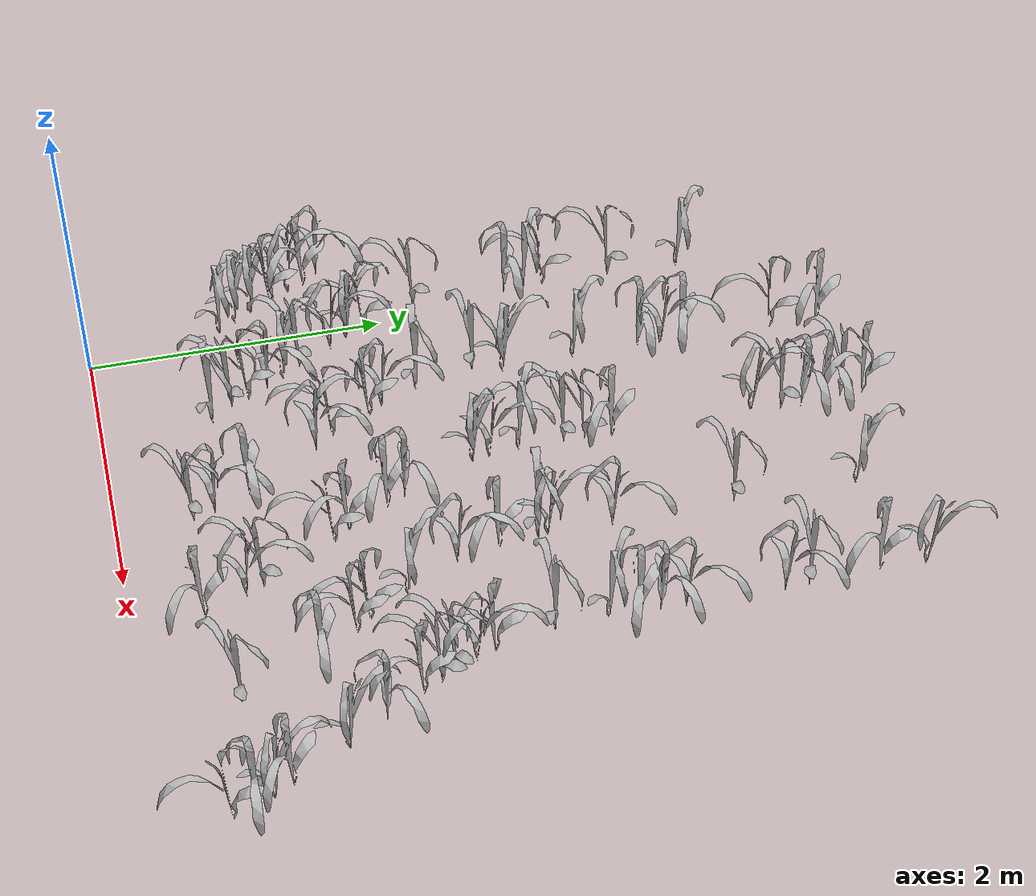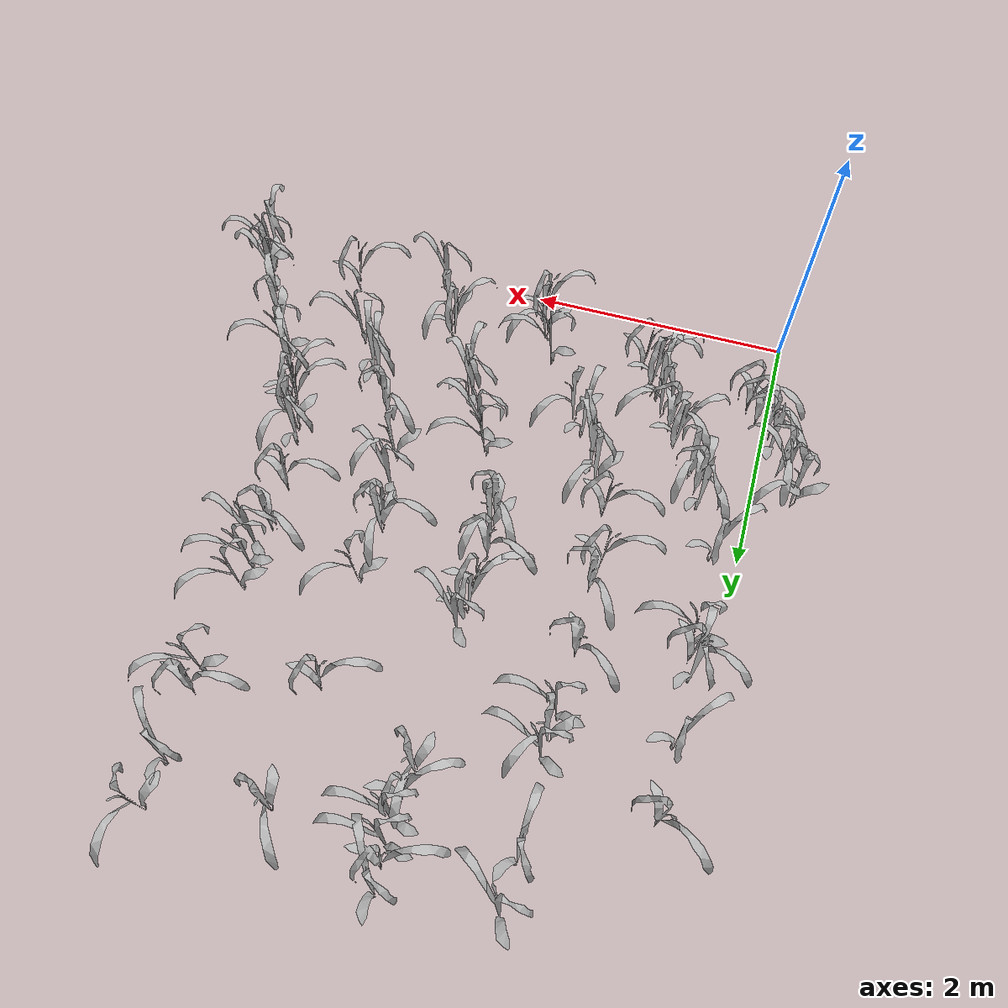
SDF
<sdf version="1.6">
 <world name="default">
  <include>
   <uri>model://maize_01</uri>
   <pose>0.18383181959480918 0.8958662362796985 0.2989652620931421 0.0 0.0 3.467905282745081</pose>
   <name>maize_01_0332</name>
   <static>true</static>
  </include>
  <include>
   <uri>model://maize_01</uri>
   <pose>0.10682219940322188 1.0131280186698228 0.2989652620931421 0.0 0.0 3.183100526046274</pose>
   <name>maize_01_0333</name>
   <static>true</static>
  </include>
  <include>
   <uri>model://maize_01</uri>
   <pose>0.03365599726035004 1.1314495480487918 0.2989652620931421 0.0 0.0 3.1187245882606707</pose>
   <name>maize_01_0334</name>
   <static>true</static>
  </include>
  <include>
   <uri>model://maize_01</uri>
   <pose>-0.030139900420178806 1.2696227397076558 0.2989652620931421 0.0 0.0 5.77605681294345</pose>
   <name>maize_01_0335</name>
   <static>true</static>
  </include>
  <include>
   <uri>model://maize_01</uri>
   <pose>-0.11407215265357198 1.4069969621074498 0.2989652620931421 0.0 0.0 2.4476001732700423</pose>
   <name>maize_01_0336</name>
   <static>true</static>
  </include>
  <include>
   <uri>model://maize_01</uri>
   <pose>-0.16986459446601312 1.516236006624349 0.2989652620931421 0.0 0.0 0.1114111442825732</pose>
   <name>maize_01_0337</name>
   <static>true</static>
  </include>
  <include>
   <uri>model://maize_01</uri>
   <pose>-0.247844698500318 1.6207478159505777 0.2989652620931421 0.0 0.0 1.531674634833781</pose>
   <name>maize_01_0338</name>
   <static>true</static>
  </include>
  <include>
   <uri>model://maize_01</uri>
   <pose>1.012828374834897 0.7353172180094185 0.2993062523895748 0.0 0.0 3.9300456820366896</pose>
   <name>maize_01_0376</name>
   <static>true</static>
  </include>
  <include>
   <uri>model://maize_01</uri>
   <pose>0.912483548576519 0.8740058016692058 0.2993062523895748 0.0 0.0 4.674985481229111</pose>
   <name>maize_01_0377</name>
   <static>true</static>
  </include>
  <include>
   <uri>model://maize_01</uri>
   <pose>0.8467944789519872 0.9890255482569976 0.2993062523895748 0.0 0.0 5.393729415344692</pose>
   <name>maize_01_0378</name>
   <static>true</static>
  </include>
  <include>
   <uri>model://maize_01</uri>
   <pose>0.7930646753303605 1.1227019811757557 0.2993062523895748 0.0 0.0 1.5592919034997363</pose>
   <name>maize_01_0379</name>
   <static>true</static>
  </include>
  <include>
   <uri>model://maize_01</uri>
   <pose>0.7101213813682363 1.2471427965538016 0.2993062523895748 0.0 0.0 3.1701744162668226</pose>
   <name>maize_01_0380</name>
   <static>true</static>
  </include>
  <include>
   <uri>model://maize_01</uri>
   <pose>0.6414324652614896 1.3657087246369624 0.2993062523895748 0.0 0.0 4.6450665034504475</pose>
   <name>maize_01_0381</name>
   <static>true</static>
  </include>
  <include>
   <uri>model://maize_01</uri>
   <pose>0.49301208837098787 1.5984581411932106 0.29894575445257004 0.0 0.0 2.1838838725683924</pose>
   <name>maize_01_0382</name>
   <static>true</static>
  </include>
  <include>
   <uri>model://maize_01</uri>
   <pose>0.4282886814252407 1.7213777871286966 0.29894575445257004 0.0 0.0 2.973416190661603</pose>
   <name>maize_01_0383</name>
   <static>true</static>
  </include>
  <include>
   <uri>model://maize_01</uri>
   <pose>0.3800023817713878 1.8423235570081855 0.29894575445257004 0.0 0.0 5.534383781625639</pose>
   <name>maize_01_0384</name>
   <static>true</static>
  </include>
  <include>
   <uri>model://maize_01</uri>
   <pose>0.2188367861700182 2.2133814139831434 0.29894575445257004 0.0 0.0 4.7784327291552495</pose>
   <name>maize_01_0387</name>
   <static>true</static>
  </include>
  <include>
   <uri>model://maize_01</uri>
   <pose>0.21326600575123653 2.8480899628144463 0.3005394333242308 0.0 0.0 0.8484978051286923</pose>
   <name>maize_01_0389</name>
   <static>true</static>
  </include>
  <include>
   <uri>model://maize_01</uri>
   <pose>0.2193484533585159 2.9879449052466858 0.3005394333242308 0.0 0.0 3.472309276198551</pose>
   <name>maize_01_0390</name>
   <static>true</static>
  </include>
  <include>
   <uri>model://maize_01</uri>
   <pose>0.18811778829982437 3.122969712779034 0.3005394333242308 0.0 0.0 5.433367640292908</pose>
   <name>maize_01_0391</name>
   <static>true</static>
  </include>
  <include>
   <uri>model://maize_01</uri>
   <pose>0.19607369249313208 3.584910728009977 0.2990346057010371 0.0 0.0 4.801097184111575</pose>
   <name>maize_01_0392</name>
   <static>true</static>
  </include>
  <include>
   <uri>model://maize_01</uri>
   <pose>0.20859107375786554 4.078234861976232 0.29922777058073424 0.0 0.0 3.2755222667623034</pose>
   <name>maize_01_0393</name>
   <static>true</static>
  </include>
  <include>
   <uri>model://maize_01</uri>
   <pose>1.8538640170069367 0.4985291652945658 0.2990923173278823 0.0 0.0 4.567286718668074</pose>
   <name>maize_01_0436</name>
   <static>true</static>
  </include>
  <include>
   <uri>model://maize_01</uri>
   <pose>1.806072977665157 0.6341701893790617 0.2990923173278823 0.0 0.0 1.8187435877613938</pose>
   <name>maize_01_0437</name>
   <static>true</static>
  </include>
  <include>
   <uri>model://maize_01</uri>
   <pose>1.696546730911871 0.8669029227703875 0.2990923173278823 0.0 0.0 0.8303641448478652</pose>
   <name>maize_01_0439</name>
   <static>true</static>
  </include>
  <include>
   <uri>model://maize_01</uri>
   <pose>1.4020536881384886 1.3449177030134798 0.2990923173278823 0.0 0.0 1.7071654769022988</pose>
   <name>maize_01_0443</name>
   <static>true</static>
  </include>
  <include>
   <uri>model://maize_01</uri>
   <pose>1.3064841182082183 1.4671540642052026 0.2990923173278823 0.0 0.0 5.4288713462343</pose>
   <name>maize_01_0444</name>
   <static>true</static>
  </include>
  <include>
   <uri>model://maize_01</uri>
   <pose>1.1803467144442157 1.7322829820256078 0.2990923173278823 0.0 0.0 5.932486716604748</pose>
   <name>maize_01_0446</name>
   <static>true</static>
  </include>
  <include>
   <uri>model://maize_01</uri>
   <pose>1.1205813043456343 1.8288571493019707 0.2990923173278823 0.0 0.0 1.9795636196151147</pose>
   <name>maize_01_0447</name>
   <static>true</static>
  </include>
  <include>
   <uri>model://maize_01</uri>
   <pose>1.0106715780736992 2.0833273254413958 0.2990923173278823 0.0 0.0 3.8296284608341753</pose>
   <name>maize_01_0449</name>
   <static>true</static>
  </include>
  <include>
   <uri>model://maize_01</uri>
   <pose>0.9361924031626596 2.477568465130609 0.2990923173278823 0.0 0.0 4.108461705889043</pose>
   <name>maize_01_0452</name>
   <static>true</static>
  </include>
  <include>
   <uri>model://maize_01</uri>
   <pose>0.9659545035528365 2.6769678661782126 0.2990923173278823 0.0 0.0 2.8997272174748483</pose>
   <name>maize_01_0453</name>
   <static>true</static>
  </include>
  <include>
   <uri>model://maize_01</uri>
   <pose>0.9399575981901316 3.163209885321598 0.2990923173278823 0.0 0.0 3.232350273193887</pose>
   <name>maize_01_0456</name>
   <static>true</static>
  </include>
  <include>
   <uri>model://maize_01</uri>
   <pose>0.9454066304205548 3.6010821461202647 0.2990923173278823 0.0 0.0 0.7509864420884211</pose>
   <name>maize_01_0459</name>
   <static>true</static>
  </include>
  <include>
   <uri>model://maize_01</uri>
   <pose>0.9620585859983455 3.7592191460716475 0.2990923173278823 0.0 0.0 1.8832667171537445</pose>
   <name>maize_01_0460</name>
   <static>true</static>
  </include>
  <include>
   <uri>model://maize_01</uri>
   <pose>0.9677210554453495 3.8943868632054373 0.2990923173278823 0.0 0.0 0.5216298915623129</pose>
   <name>maize_01_0461</name>
   <static>true</static>
  </include>
  <include>
   <uri>model://maize_01</uri>
   <pose>0.9450952133523207 4.527424968551318 0.2990923173278823 0.0 0.0 5.445542916060109</pose>
   <name>maize_01_0465</name>
   <static>true</static>
  </include>
  <include>
   <uri>model://maize_01</uri>
   <pose>0.9557466572316871 4.848636410556844 0.2990923173278823 0.0 0.0 0.13216284630662953</pose>
   <name>maize_01_0467</name>
   <static>true</static>
  </include>
  <include>
   <uri>model://maize_01</uri>
   <pose>2.6402161920165814 0.4567658506337142 0.30101962971301305 0.0 0.0 0.20229419038211047</pose>
   <name>maize_01_0507</name>
   <static>true</static>
  </include>
  <include>
   <uri>model://maize_01</uri>
   <pose>2.5356686007897564 0.7301002482906636 0.30101962971301305 0.0 0.0 2.1605351077560973</pose>
   <name>maize_01_0509</name>
   <static>true</static>
  </include>
  <include>
   <uri>model://maize_01</uri>
   <pose>2.482471028773228 0.8414080011564617 0.30101962971301305 0.0 0.0 4.86205017392236</pose>
   <name>maize_01_0510</name>
   <static>true</static>
  </include>
  <include>
   <uri>model://maize_01</uri>
   <pose>2.22001349388456 1.32360384427119 0.30101962971301305 0.0 0.0 5.498655859007698</pose>
   <name>maize_01_0514</name>
   <static>true</static>
  </include>
  <include>
   <uri>model://maize_01</uri>
   <pose>2.147517057112355 1.425595539721203 0.30101962971301305 0.0 0.0 6.2511451194413965</pose>
   <name>maize_01_0515</name>
   <static>true</static>
  </include>
  <include>
   <uri>model://maize_01</uri>
   <pose>1.99874674759247 1.6991893791973947 0.30101962971301305 0.0 0.0 0.36033168010260913</pose>
   <name>maize_01_0517</name>
   <static>true</static>
  </include>
  <include>
   <uri>model://maize_01</uri>
   <pose>1.9422420469520227 1.8190444375529455 0.30101962971301305 0.0 0.0 1.1310914099619034</pose>
   <name>maize_01_0518</name>
   <static>true</static>
  </include>
  <include>
   <uri>model://maize_01</uri>
   <pose>1.7294679352550018 2.3087557799062695 0.30101962971301305 0.0 0.0 2.9328838679451583</pose>
   <name>maize_01_0522</name>
   <static>true</static>
  </include>
  <include>
   <uri>model://maize_01</uri>
   <pose>1.7216014587379165 2.4183280448963056 0.30101962971301305 0.0 0.0 2.1235781015762156</pose>
   <name>maize_01_0523</name>
   <static>true</static>
  </include>
  <include>
   <uri>model://maize_01</uri>
   <pose>1.6929656197168172 2.6213852848427845 0.30101962971301305 0.0 0.0 3.5038879363604556</pose>
   <name>maize_01_0525</name>
   <static>true</static>
  </include>
  <include>
   <uri>model://maize_01</uri>
   <pose>1.7000143537381944 2.9136682267790976 0.30101962971301305 0.0 0.0 4.4434189242551385</pose>
   <name>maize_01_0527</name>
   <static>true</static>
  </include>
  <include>
   <uri>model://maize_01</uri>
   <pose>1.6981906704206267 3.04856456404637 0.30101962971301305 0.0 0.0 4.850753548553952</pose>
   <name>maize_01_0528</name>
   <static>true</static>
  </include>
  <include>
   <uri>model://maize_01</uri>
   <pose>1.7148308735015252 3.2260963425431552 0.30101962971301305 0.0 0.0 0.19033029653726397</pose>
   <name>maize_01_0529</name>
   <static>true</static>
  </include>
  <include>
   <uri>model://maize_01</uri>
   <pose>1.6962520768424836 4.1757122616043825 0.30101962971301305 0.0 0.0 2.420660540478196</pose>
   <name>maize_01_0535</name>
   <static>true</static>
  </include>
  <include>
   <uri>model://maize_01</uri>
   <pose>1.7186621027451776 4.369862446157419 0.30101962971301305 0.0 0.0 4.560807926900723</pose>
   <name>maize_01_0536</name>
   <static>true</static>
  </include>
  <include>
   <uri>model://maize_01</uri>
   <pose>1.717565895490467 4.507084334185818 0.30101962971301305 0.0 0.0 0.8379686513834279</pose>
   <name>maize_01_0537</name>
   <static>true</static>
  </include>
  <include>
   <uri>model://maize_01</uri>
   <pose>1.7086012571251963 4.653471949003678 0.30101962971301305 0.0 0.0 0.8679279159774823</pose>
   <name>maize_01_0538</name>
   <static>true</static>
  </include>
  <include>
   <uri>model://maize_01</uri>
   <pose>1.7047240380133635 4.7812535196118775 0.30101962971301305 0.0 0.0 4.267948954871244</pose>
   <name>maize_01_0539</name>
   <static>true</static>
  </include>
  <include>
   <uri>model://maize_01</uri>
   <pose>1.690839619365011 4.93233747880245 0.30101962971301305 0.0 0.0 6.033414346183989</pose>
   <name>maize_01_0540</name>
   <static>true</static>
  </include>
  <include>
   <uri>model://maize_01</uri>
   <pose>3.345544340401027 0.5833129483696806 0.2992429750567116 0.0 0.0 4.377894424973409</pose>
   <name>maize_01_0581</name>
   <static>true</static>
  </include>
  <include>
   <uri>model://maize_01</uri>
   <pose>3.1306798426537354 1.0892240733048595 0.2992429750567116 0.0 0.0 0.7403170090278466</pose>
   <name>maize_01_0585</name>
   <static>true</static>
  </include>
  <include>
   <uri>model://maize_01</uri>
   <pose>2.96281236119666 1.3322516069024146 0.2992429750567116 0.0 0.0 5.899781854578076</pose>
   <name>maize_01_0587</name>
   <static>true</static>
  </include>
  <include>
   <uri>model://maize_01</uri>
   <pose>2.882531071928311 1.427355713246486 0.2992429750567116 0.0 0.0 5.7852643197938045</pose>
   <name>maize_01_0588</name>
   <static>true</static>
  </include>
  <include>
   <uri>model://maize_01</uri>
   <pose>2.7406292504287193 1.6922705828750588 0.2992429750567116 0.0 0.0 3.204395452580971</pose>
   <name>maize_01_0590</name>
   <static>true</static>
  </include>
  <include>
   <uri>model://maize_01</uri>
   <pose>2.5491399311644236 2.0354523608694 0.2992429750567116 0.0 0.0 1.9050470311990904</pose>
   <name>maize_01_0593</name>
   <static>true</static>
  </include>
  <include>
   <uri>model://maize_01</uri>
   <pose>2.490510653039555 2.309075533372726 0.2992429750567116 0.0 0.0 0.1660931122747986</pose>
   <name>maize_01_0595</name>
   <static>true</static>
  </include>
  <include>
   <uri>model://maize_01</uri>
   <pose>2.459442197616547 2.57122721057955 0.2992429750567116 0.0 0.0 3.7842739654866513</pose>
   <name>maize_01_0597</name>
   <static>true</static>
  </include>
  <include>
   <uri>model://maize_01</uri>
   <pose>2.454447793635713 2.63068407286165 0.2992429750567116 0.0 0.0 2.551866981706281</pose>
   <name>maize_01_0598</name>
   <static>true</static>
  </include>
  <include>
   <uri>model://maize_01</uri>
   <pose>2.4704403179652012 3.0404519058761186 0.2992429750567116 0.0 0.0 1.6677495249383212</pose>
   <name>maize_01_0601</name>
   <static>true</static>
  </include>
  <include>
   <uri>model://maize_01</uri>
   <pose>2.4414995197172646 3.8406339961090965 0.2999009360525933 0.0 0.0 4.264882453226914</pose>
   <name>maize_01_0606</name>
   <static>true</static>
  </include>
  <include>
   <uri>model://maize_01</uri>
   <pose>2.457196596898592 4.644519134840929 0.2999009360525933 0.0 0.0 2.9211362353382015</pose>
   <name>maize_01_0611</name>
   <static>true</static>
  </include>
  <include>
   <uri>model://maize_01</uri>
   <pose>4.136010637896075 0.4126216235997713 0.2977285636911557 0.0 0.0 5.675702944375223</pose>
   <name>maize_01_0653</name>
   <static>true</static>
  </include>
  <include>
   <uri>model://maize_01</uri>
   <pose>4.085357144081345 0.5532465886164288 0.2977285636911557 0.0 0.0 0.7471259879260177</pose>
   <name>maize_01_0654</name>
   <static>true</static>
  </include>
  <include>
   <uri>model://maize_01</uri>
   <pose>4.058908927092408 0.6674086600439064 0.2977285636911557 0.0 0.0 2.8582431350921365</pose>
   <name>maize_01_0655</name>
   <static>true</static>
  </include>
  <include>
   <uri>model://maize_01</uri>
   <pose>3.985694156710345 0.7794825714966709 0.2977285636911557 0.0 0.0 0.32110129514749236</pose>
   <name>maize_01_0656</name>
   <static>true</static>
  </include>
  <include>
   <uri>model://maize_01</uri>
   <pose>3.8016277290091147 1.1414296417361853 0.2977285636911557 0.0 0.0 2.9465699344175875</pose>
   <name>maize_01_0659</name>
   <static>true</static>
  </include>
  <include>
   <uri>model://maize_01</uri>
   <pose>3.6432488830679124 1.3857457581940602 0.2977285636911557 0.0 0.0 1.2087566233467175</pose>
   <name>maize_01_0661</name>
   <static>true</static>
  </include>
  <include>
   <uri>model://maize_01</uri>
   <pose>3.4998487174695874 1.6333527947301547 0.2977285636911557 0.0 0.0 6.0620948956304685</pose>
   <name>maize_01_0663</name>
   <static>true</static>
  </include>
  <include>
   <uri>model://maize_01</uri>
   <pose>3.4433351920916118 1.7543970698751659 0.2977285636911557 0.0 0.0 4.962848151806197</pose>
   <name>maize_01_0664</name>
   <static>true</static>
  </include>
  <include>
   <uri>model://maize_01</uri>
   <pose>3.3847268559675334 1.850713171013253 0.2977285636911557 0.0 0.0 4.683617582082462</pose>
   <name>maize_01_0665</name>
   <static>true</static>
  </include>
  <include>
   <uri>model://maize_01</uri>
   <pose>3.3330217266360926 1.991891061478826 0.2977285636911557 0.0 0.0 2.156995091749225</pose>
   <name>maize_01_0666</name>
   <static>true</static>
  </include>
  <include>
   <uri>model://maize_01</uri>
   <pose>3.283806991704417 2.110916309326314 0.2977285636911557 0.0 0.0 6.051821902830998</pose>
   <name>maize_01_0667</name>
   <static>true</static>
  </include>
  <include>
   <uri>model://maize_01</uri>
   <pose>3.2064655670377955 2.4995262474394013 0.2977285636911557 0.0 0.0 3.981190579529021</pose>
   <name>maize_01_0670</name>
   <static>true</static>
  </include>
  <include>
   <uri>model://maize_01</uri>
   <pose>3.191217040317342 2.839646215169291 0.29882636090726283 0.0 0.0 3.387124225090478</pose>
   <name>maize_01_0672</name>
   <static>true</static>
  </include>
  <include>
   <uri>model://maize_01</uri>
   <pose>3.2199193582961008 3.0136703463414105 0.29882636090726283 0.0 0.0 0.46315154954197585</pose>
   <name>maize_01_0673</name>
   <static>true</static>
  </include>
  <include>
   <uri>model://maize_01</uri>
   <pose>3.205387313996782 3.1511687978510925 0.29882636090726283 0.0 0.0 1.1168314345636041</pose>
   <name>maize_01_0674</name>
   <static>true</static>
  </include>
  <include>
   <uri>model://maize_01</uri>
   <pose>3.207999943676113 3.313547741315237 0.29882636090726283 0.0 0.0 1.5741237122461136</pose>
   <name>maize_01_0675</name>
   <static>true</static>
  </include>
  <include>
   <uri>model://maize_01</uri>
   <pose>3.21583111807457 3.93787436746856 0.29882636090726283 0.0 0.0 1.472587422448211</pose>
   <name>maize_01_0679</name>
   <static>true</static>
  </include>
  <include>
   <uri>model://maize_01</uri>
   <pose>3.2107374032965112 4.0955457913202045 0.29882636090726283 0.0 0.0 4.030174689813396</pose>
   <name>maize_01_0680</name>
   <static>true</static>
  </include>
  <include>
   <uri>model://maize_01</uri>
   <pose>3.1838321436094605 4.552826804871645 0.29882636090726283 0.0 0.0 6.164980895900921</pose>
   <name>maize_01_0683</name>
   <static>true</static>
  </include>
  <include>
   <uri>model://maize_01</uri>
   <pose>3.2045724236427193 4.851050420212389 0.2993719202043316 0.0 0.0 2.3421648574164995</pose>
   <name>maize_01_0685</name>
   <static>false</static>
  </include>
 </world>
</sdf>
